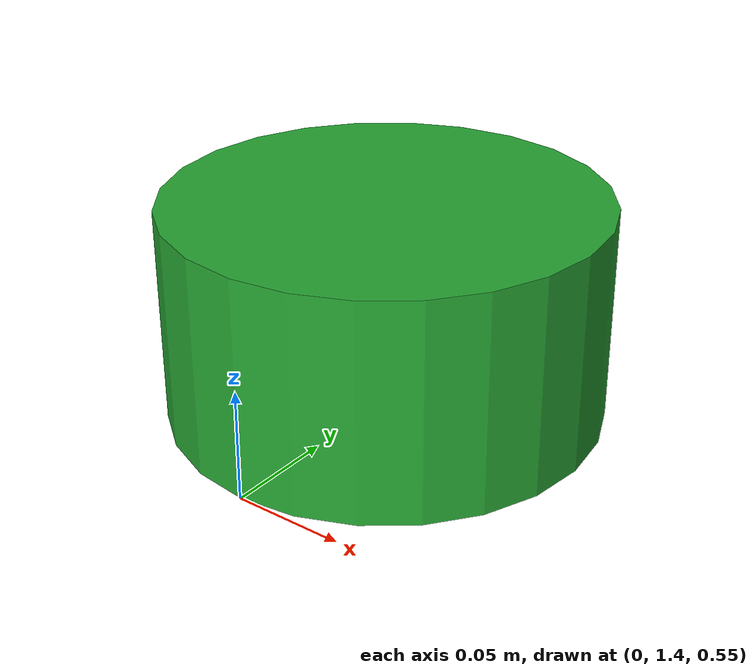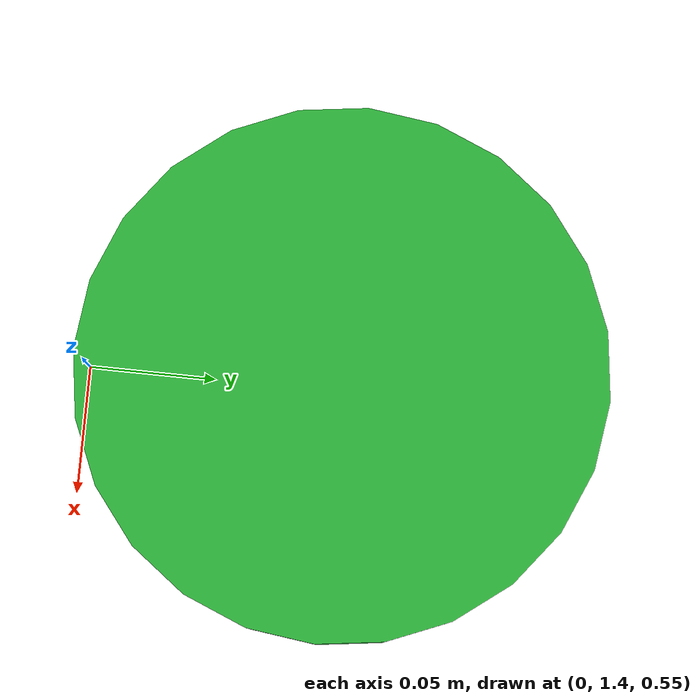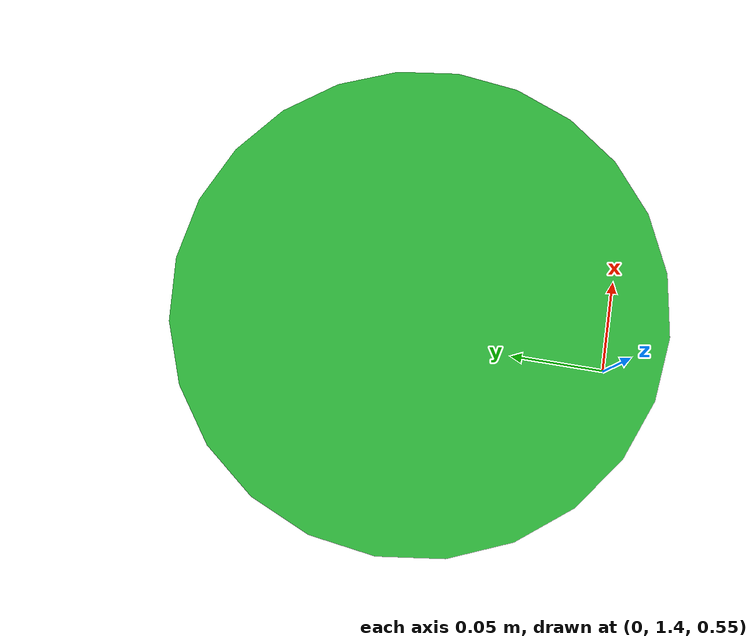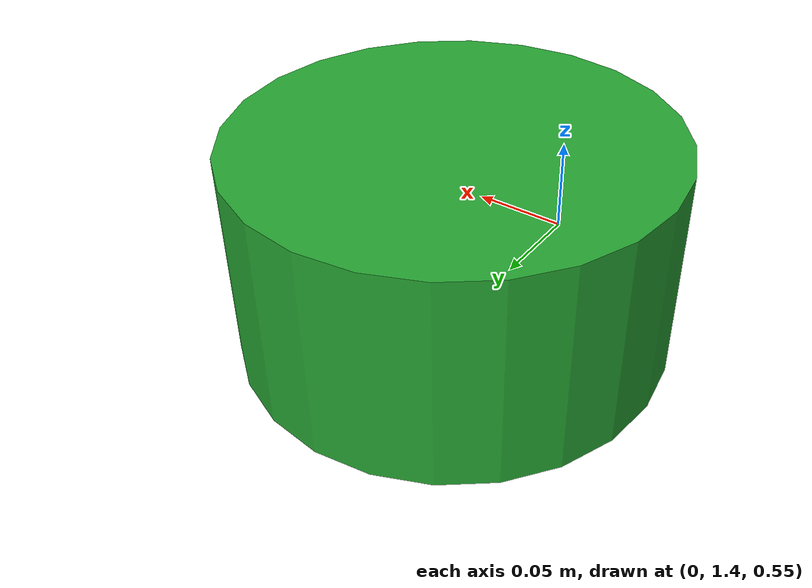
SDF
<?xml version="1.0" ?>
<sdf version="1.4">
    <world name="default">
<model name="model_6_prismatic_sdf">
<pose>0.0 1.5 0.6  0 0 0</pose>
<link name="link">
<inertial>
<inertia>
<ixx>0.01</ixx>
<ixy>0.0</ixy>
<ixz>0.0</ixz>
<iyy>0.01</iyy>
<iyz>0.0</iyz>
<izz>0.01</izz>
</inertia>
<mass>1.0</mass>
</inertial>
<visual name="visual">
<geometry>
<cylinder>
<length>0.1</length>
<radius>0.1</radius>
</cylinder>
</geometry>
<material>
<script><uri>file://media/materials/scripts/gazebo.material</uri><name>Gazebo/Green</name></script>
</material>
</visual>
<collision name="collision">
<geometry>
<cylinder>
<length>0.1</length>
<radius>0.1</radius>
</cylinder>
</geometry>
</collision>
</link>
<joint name="joint" type="prismatic">
<parent>world</parent>
<child>link</child>
<pose>0.0 0.0 0.5  0 0 0</pose>
<axis>
<limit>
<lower>-1.0</lower>
<upper>1.0</upper>
</limit>
<xyz>0.0 0.0 1.0</xyz>
<dynamics>
<spring_stiffness>111.1111</spring_stiffness>
<spring_reference>0.0</spring_reference>
<damping>0.0</damping>
<friction>0.0</friction>
</dynamics>
</axis>
</joint>
</model>
</world>
</sdf>
